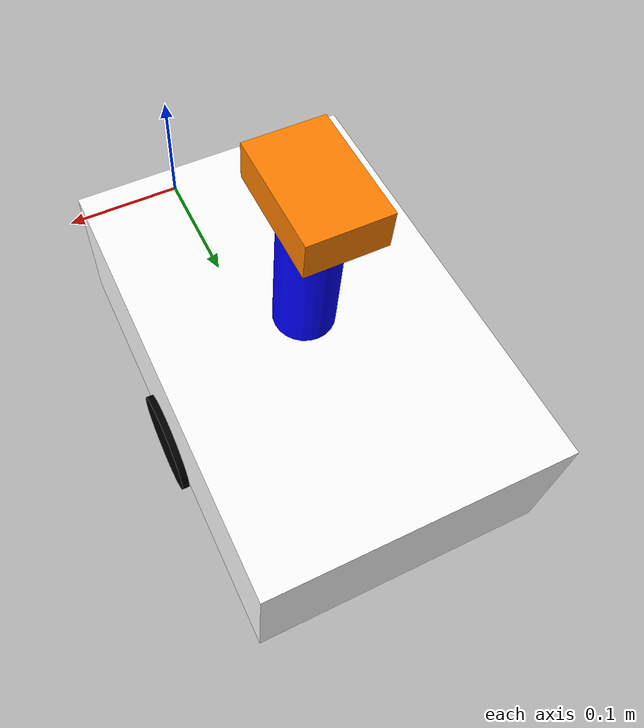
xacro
<?xml version="1.0"?>
<robot xmlns:xacro="http://www.ros.org/wiki/xacro" name="my_robot">

  <xacro:include filename="macros/macros_includes.xacro"/>

  <xacro:include filename="vehicle_bases/chassis_base.xacro"/>
  <xacro:include filename="vehicle_bases/wheel_base.xacro"/>

  <xacro:include filename="component_bases/lidar_base.xacro"/>

  <plugin
    filename="gz-sim-diff-drive-system"
    name="gz::sim::systems::DiffDrive">
    <left_joint>venstre_hjul_joint</left_joint>
    <right_joint>høyre_hjul_joint</right_joint>
    <wheel_separation>0.205</wheel_separation>
    <wheel_radius>0.035</wheel_radius>
    <odom_publish_frequency>1</odom_publish_frequency>
    <topic>cmd_vel</topic>
  </plugin>

</robot>

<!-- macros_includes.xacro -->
<robot xmlns:xacro="http://www.ros.org/wiki/xacro" name="my_robot">

    <xacro:macro name="inertial_sphere" params="mass radius *origin">
        <inertial>
            <xacro:insert_block name="origin"/>
            <mass value="${mass}"/>
            <inertia
                ixx="${(2/5) * mass * (radius*radius)}" ixy="0.0" ixz="0.0"
                iyy="${(2/5) * mass * (radius*radius)}" iyz="0.0"
                izz="${(2/5) * mass * (radius*radius)}"/>
        </inertial>
    </xacro:macro>

    <xacro:macro name="inertial_box" params="mass x y z *origin">
        <inertial>
            <xacro:insert_block name="origin"/>
            <mass value="${mass}"/>
            <inertia
                ixx="${(1/12) * mass * (y*y+z*z)}" ixy="0.0" ixz="0.0"
                iyy="${(1/12) * mass * (x*x+z*z)}" iyz="0.0"
                izz="${(1/12) * mass * (x*x+y*y)}"/>
        </inertial>
    </xacro:macro>

    <xacro:macro name="inertial_cylinder" params="mass length radius *origin">
        <inertial>
            <xacro:insert_block name="origin"/>
            <mass value="${mass}"/>
            <inertia
                ixx="${(1/12) * mass * (3*radius*radius + length*length)}" ixy="0.0" ixz="0.0"
                iyy="${(1/12) * mass * (3*radius*radius + length*length)}" iyz="0.0"
                izz="${(1/2) * mass * (radius*radius)}"/>
        </inertial>
    </xacro:macro>

    <material name="white">
        <color rgba="1 1 1 1"/>
    </material>

    <material name="orange">
        <color rgba="1 0.5 0 1"/>
    </material>

    <material name="blue">
        <color rgba="0 0 1 1"/>
    </material>

    <material name="black">
        <color rgba="0 0 0 1"/>
    </material>

</robot>

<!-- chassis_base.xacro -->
<robot xmlns:xacro="http://www.ros.org/wiki/xacro" name="my_robot">

    <link name="footbase_link"/>

    <link name="base_link"/>

        <!-- Fixed joint with offset -->
    <joint name="base_to_offset" type="fixed">
        <parent link="footbase_link"/>
        <child link="base_link"/>
        <origin xyz="0.0 0.0 0.085" rpy="0 0 0"/>  <!-- This is the offset: 10cm forward, 20cm up -->
    </joint>

    <joint name="kropp_joint" type="fixed">
        <parent link="base_link"/>
        <child link="kropp"/>
        <!-- Offset for kropp ift. base_link (brukes til å finjustere modellens referansepunkt). -->
        <origin xyz="0 0.25 0"/>
    </joint>

    <link name="kropp">
        <!-- Kropp: visuell geometri og kollisjon holdes identiske (en boks) for stabil og rask simulering.
             Inertial beregnes via xacro-makro for konsistens når dimensjoner endres. -->
        <visual>
            <origin xyz="0.0 0.0 0.0"/>
            <geometry>
                <box size="0.2 0.3 0.1"/>
            </geometry>
            <material name="white"/>
        </visual>
        <collision>
            <origin xyz="0.0 0.0 0.0"/>
            <geometry>
                <box size="0.2 0.3 0.1"/>
            </geometry>
        </collision>
        <xacro:inertial_box mass="0.5" x="0.2" y="0.3" z="0.1">
            <origin xyz="0 0 0" rpy="0 0 0"/>
        </xacro:inertial_box>
    </link>

    <gazebo reference="kropp">
        <material>Gazebo/White</material>
    </gazebo>

    <!-- Gimbal ("gimble")
         Ønsket: blå stand er fast, og orange boks roterer (yaw rundt Z, pitch rundt X). -->

    <joint name="gimble_stand_joint" type="fixed">
        <parent link="kropp"/>
        <child link="gimble_stand"/>
        <!-- kropp er 0.1 høy (±0.05). Stand er 0.1 lang (±0.05). Senter på stand plasseres derfor på z=0.10. -->
        <origin xyz="0 0 0.10" rpy="0 0 0"/>
    </joint>

    <link name="gimble_stand">
        <visual>
            <geometry>
                <cylinder radius="0.02" length="0.1"/>
            </geometry>
            <material name="blue"/>
        </visual>
        <collision>
            <geometry>
                <cylinder radius="0.02" length="0.1"/>
            </geometry>
        </collision>
        <xacro:inertial_cylinder mass="0.1" length="0.1" radius="0.02">
            <origin xyz="0 0 0" rpy="0 0 0"/>
        </xacro:inertial_cylinder>
    </link>
    <gazebo reference="gimble_stand">
        <material>Gazebo/Blue</material>
    </gazebo>

    <joint name="gimble_yaw_joint" type="continuous">
        <parent link="gimble_stand"/>
        <child link="gimble_yaw"/>
        <!-- Pivot på toppen av stand (stand topp = +0.05 i stand-rammen). -->
        <origin xyz="0 0 0.05" rpy="0 0 0"/>
        <axis xyz="0 0 1"/>
        <limit effort="1.0" velocity="1.0"/>
    </joint>

    <link name="gimble_yaw">
        <xacro:inertial_sphere mass="0.01" radius="0.01">
            <origin xyz="0 0 0" rpy="0 0 0"/>
        </xacro:inertial_sphere>
    </link>

    <!-- Pitch begrenses til ±15 grader. -->
    <joint name="gimble_pitch_joint" type="revolute">
        <parent link="gimble_yaw"/>
        <child link="lidar"/>
        <origin xyz="0 0 0" rpy="0 0 0"/>
        <axis xyz="1 0 0"/>
        <limit effort="1.0" velocity="1.0" lower="-0.261799" upper="0.261799"/>
    </joint>

</robot>

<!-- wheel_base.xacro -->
<robot xmlns:xacro="http://www.ros.org/wiki/xacro" name="my_robot">

    <joint name="venstre_hjul_joint" type="continuous">
        <parent link="kropp"/>
        <child link="venstre_hjul"/>
        <origin xyz="-0.1025 0.0 -0.05"/>
        <axis xyz="1 0 0"/>
        <limit effort="1.0" velocity="10.0"/>
    </joint>

    <link name="venstre_hjul">
        <visual>
            <origin rpy="1.57079632679 0 1.57079632679"/>
            <geometry>
                <cylinder radius="0.035" length="0.005"/>
            </geometry>
            <material name="black"/>
        </visual>
        <collision>
            <origin rpy="1.57079632679 0 1.57079632679"/>
            <geometry>
                <cylinder radius="0.035" length="0.005"/>
            </geometry>
        </collision>
        <xacro:inertial_cylinder mass="0.1" length="0.005" radius="0.035">
            <origin xyz="0 0 0" rpy="0 0 0"/>
        </xacro:inertial_cylinder>
    </link>

    <gazebo reference="venstre_hjul">
        <material>Gazebo/Black</material>
    </gazebo>

    <joint name="høyre_hjul_joint" type="continuous">
        <parent link="kropp"/>
        <child link="høyre_hjul"/>
        <origin xyz="0.1025 0 -0.05"/>
        <axis xyz="1 0 0"/>
        <limit effort="1.0" velocity="10.0"/>
    </joint>

    <link name="høyre_hjul">
        <visual>
            <origin rpy="1.57079632679 0 1.57079632679"/>
            <geometry>
                <cylinder radius="0.035" length="0.005"/>
            </geometry>
            <material name="black"/>
        </visual>
        <collision>
            <origin rpy="1.57079632679 0 1.57079632679"/>
            <geometry>
                <cylinder radius="0.035" length="0.005"/>
            </geometry>
        </collision>
        <xacro:inertial_cylinder mass="0.1" length="0.005" radius="0.035">
            <origin xyz="0 0 0" rpy="0 0 0"/>
        </xacro:inertial_cylinder>
    </link>

    <gazebo reference="høyre_hjul">
        <material>Gazebo/Black</material>
    </gazebo>

    <joint name="cast_hjul_joint" type="fixed">
        <parent link="kropp"/>
        <child link="cast_hjul"/>
        <origin xyz="0 -0.12 -0.055"/>
    </joint>

    <link name="cast_hjul">
        <visual>
            <geometry>
                <sphere radius="0.03"/>
            </geometry>
            <material name="black"/>
        </visual>
        <collision>
            <geometry>
                <sphere radius="0.03"/>
            </geometry>
        </collision>
        <xacro:inertial_sphere mass="0.1" radius="0.03">
            <origin xyz="0 0 0" rpy="0 0 0"/>
        </xacro:inertial_sphere>
    </link>
    <gazebo reference="cast_hjul">
        <material>Gazebo/Black</material>

        <!--friksjons coff-->
        <mu1 value="0.000001"/>
        <mu2 value="0.000001"/>
    </gazebo>

</robot>

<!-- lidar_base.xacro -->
<robot xmlns:xacro="http://www.ros.org/wiki/xacro" name="my_robot">

    <link name="lidar">
        <visual>
            <!-- Løft boksen litt opp slik at rotasjon skjer i bunn av boksen. -->
            <origin xyz="0 0 0.0125" rpy="0 0 0"/>
            <geometry>
                <!-- Skalert kopi av kropp-boksen (0.2 0.3 0.1) i 1/4 størrelse. -->
                <box size="0.05 0.075 0.025"/>
            </geometry>
            <material name="orange"/>
        </visual>
        <collision>
            <origin xyz="0 0 0.0125" rpy="0 0 0"/>
            <geometry>
                <box size="0.05 0.075 0.025"/>
            </geometry>
        </collision>
        <xacro:inertial_box mass="0.1" x="0.05" y="0.075" z="0.025">
            <origin xyz="0 0 0.0125" rpy="0 0 0"/>
        </xacro:inertial_box>
    </link>

    <gazebo reference="lidar">
        <material>Gazebo/Orange</material>
    </gazebo>

</robot>
